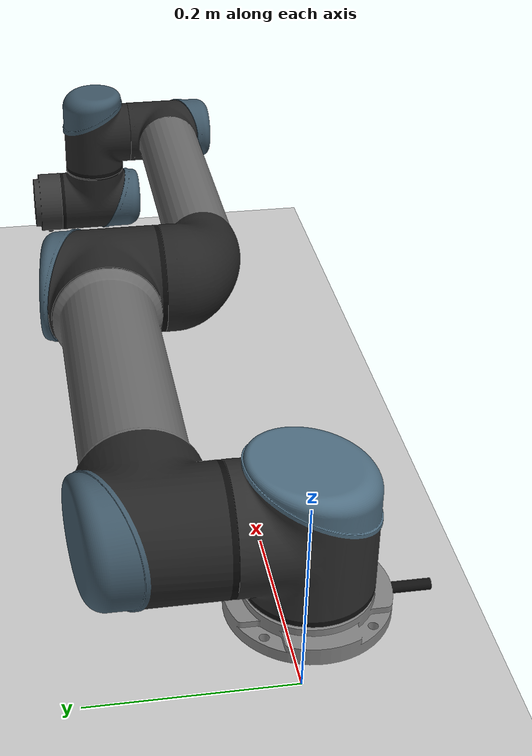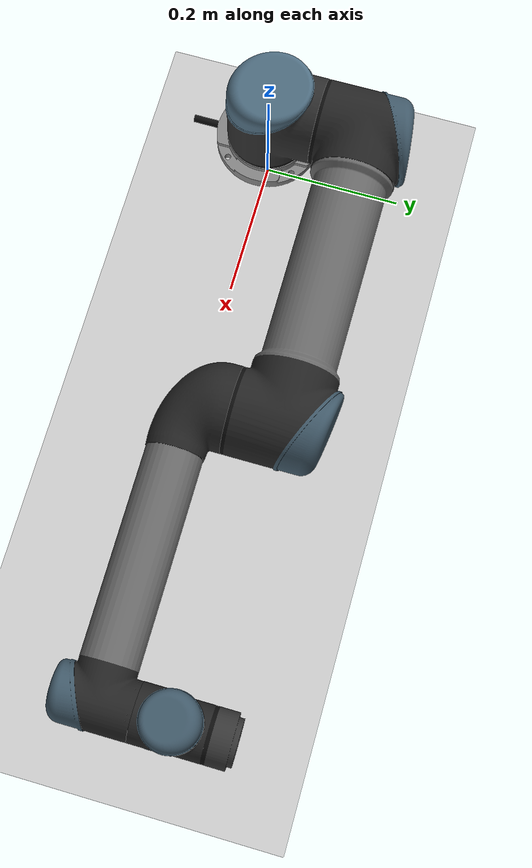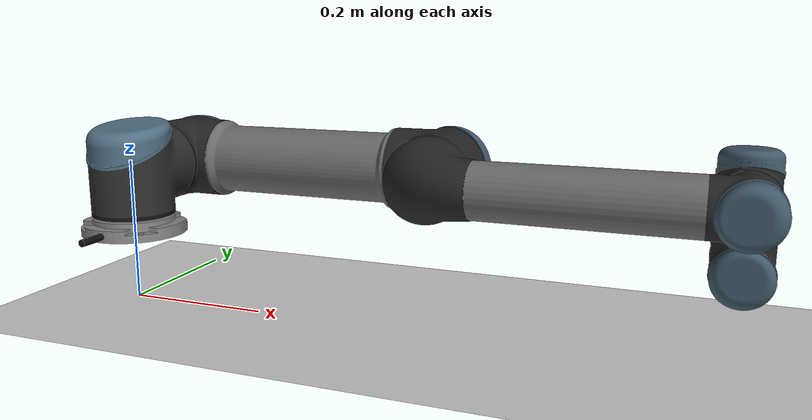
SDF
<sdf version="1.7">
 <world name="default">
  <light name="sun" type="directional">
   <pose>0 0 10 0 -0 0</pose>
   <diffuse>0.8 0.8 0.8 1</diffuse>
   <specular>0.2 0.2 0.2 1</specular>
   <attenuation>
    <range>1000</range>
    <constant>0.9</constant>
    <linear>0.01</linear>
    <quadratic>0.001</quadratic>
   </attenuation>
   <direction>-0.5 0.1 -0.9</direction>
   <spot><inner_angle>0</inner_angle><outer_angle>0</outer_angle><falloff>0</falloff></spot>
  </light>
  <model name="ground_plane">
   <static>1</static>
   <link name="link">
    <collision name="collision">
     <geometry><plane><normal>0 0 1</normal><size>100 100</size></plane></geometry>
     <surface><friction><ode><mu>100</mu><mu2>50</mu2></ode></friction></surface>
    </collision>
    <visual name="visual">
     <cast_shadows>0</cast_shadows>
     <geometry><plane><normal>0 0 1</normal><size>100 100</size></plane></geometry>
     <material>
      <script><uri>file://media/materials/scripts/gazebo.material</uri><name>Gazebo/Grey</name></script>
     </material>
    </visual>
   </link>
  </model>
  <gravity>0 0 -9.8</gravity>
  <magnetic_field>6e-06 2.3e-05 -4.2e-05</magnetic_field>
  <atmosphere type="adiabatic"/>
  <physics type="ode">
   <max_step_size>0.001</max_step_size>
   <real_time_factor>1</real_time_factor>
   <real_time_update_rate>1000</real_time_update_rate>
  </physics>
  <scene><ambient>0.4 0.4 0.4 1</ambient><background>0.7 0.7 0.7 1</background><shadows>1</shadows></scene>
  <spherical_coordinates>
   <surface_model>EARTH_WGS84</surface_model>
   <latitude_deg>0</latitude_deg>
   <longitude_deg>0</longitude_deg>
   <elevation>0</elevation>
   <heading_deg>0</heading_deg>
  </spherical_coordinates>
  <model name="robot">
   <joint name="world_joint" type="fixed">
    <pose relative_to="__model__">0 0 0 0 -0 0</pose>
    <parent>world</parent>
    <child>base_link</child>
   </joint>
   <link name="base_link">
    <pose relative_to="world_joint">0 0 0 0 -0 0</pose>
    <inertial>
     <mass>4</mass>
     <inertia>
      <ixx>0.00443333</ixx>
      <ixy>0</ixy>
      <ixz>0</ixz>
      <iyy>0.00443333</iyy>
      <iyz>0</iyz>
      <izz>0.0072</izz>
     </inertia>
    </inertial>
    <collision name="base_link_collision">
     <geometry>
      <mesh>
       <scale>1 1 1</scale>
       <uri>/home/zumra/robot_arm/src/universal_robot/ur_description/meshes/ur5/collision/base.stl</uri>
      </mesh>
     </geometry>
    </collision>
    <visual name="base_link_visual">
     <geometry>
      <mesh>
       <scale>1 1 1</scale>
       <uri>/home/zumra/robot_arm/src/universal_robot/ur_description/meshes/ur5/visual/base.dae</uri>
      </mesh>
     </geometry>
    </visual>
   </link>
   <joint name="shoulder_pan_joint" type="revolute">
    <pose relative_to="base_link">0 0 0.089159 0 -0 0</pose>
    <parent>base_link</parent>
    <child>shoulder_link</child>
    <axis>
     <xyz>0 0 1</xyz>
     <limit><lower>-6.28319</lower><upper>6.28319</upper><effort>150</effort><velocity>3.15</velocity></limit>
     <dynamics>
      <damping>0</damping>
      <friction>0</friction>
      <spring_reference>0</spring_reference>
      <spring_stiffness>0</spring_stiffness>
     </dynamics>
    </axis>
   </joint>
   <link name="shoulder_link">
    <pose relative_to="shoulder_pan_joint">0 0 0 0 -0 0</pose>
    <inertial>
     <mass>3.7</mass>
     <inertia>
      <ixx>0.0102675</ixx>
      <ixy>0</ixy>
      <ixz>0</ixz>
      <iyy>0.0102675</iyy>
      <iyz>0</iyz>
      <izz>0.00666</izz>
     </inertia>
    </inertial>
    <collision name="shoulder_link_collision">
     <geometry>
      <mesh>
       <scale>1 1 1</scale>
       <uri>/home/zumra/robot_arm/src/universal_robot/ur_description/meshes/ur5/collision/shoulder.stl</uri>
      </mesh>
     </geometry>
    </collision>
    <visual name="shoulder_link_visual">
     <geometry>
      <mesh>
       <scale>1 1 1</scale>
       <uri>/home/zumra/robot_arm/src/universal_robot/ur_description/meshes/ur5/visual/shoulder.dae</uri>
      </mesh>
     </geometry>
    </visual>
    <self_collide>1</self_collide>
   </link>
   <joint name="shoulder_lift_joint" type="revolute">
    <pose relative_to="shoulder_link">0 0.13585 0 3.14159 1.57079 3.14159</pose>
    <parent>shoulder_link</parent>
    <child>upper_arm_link</child>
    <axis>
     <xyz>0 1 0</xyz>
     <limit><lower>-6.28319</lower><upper>6.28319</upper><effort>150</effort><velocity>3.15</velocity></limit>
     <dynamics>
      <damping>0</damping>
      <friction>0</friction>
      <spring_reference>0</spring_reference>
      <spring_stiffness>0</spring_stiffness>
     </dynamics>
    </axis>
   </joint>
   <link name="upper_arm_link">
    <pose relative_to="shoulder_lift_joint">0 0 0 0 -0 0</pose>
    <inertial>
     <pose>0 0 0.28 0 -0 0</pose>
     <mass>8.393</mass>
     <inertia>
      <ixx>0.226891</ixx>
      <ixy>0</ixy>
      <ixz>0</ixz>
      <iyy>0.226891</iyy>
      <iyz>0</iyz>
      <izz>0.0151074</izz>
     </inertia>
    </inertial>
    <collision name="upper_arm_link_collision">
     <geometry>
      <mesh>
       <scale>1 1 1</scale>
       <uri>/home/zumra/robot_arm/src/universal_robot/ur_description/meshes/ur5/collision/upperarm.stl</uri>
      </mesh>
     </geometry>
    </collision>
    <visual name="upper_arm_link_visual">
     <geometry>
      <mesh>
       <scale>1 1 1</scale>
       <uri>/home/zumra/robot_arm/src/universal_robot/ur_description/meshes/ur5/visual/upperarm.dae</uri>
      </mesh>
     </geometry>
    </visual>
    <self_collide>1</self_collide>
   </link>
   <joint name="elbow_joint" type="revolute">
    <pose relative_to="upper_arm_link">0 -0.1197 0.425 0 -0 0</pose>
    <parent>upper_arm_link</parent>
    <child>forearm_link</child>
    <axis>
     <xyz>0 1 0</xyz>
     <limit><lower>-3.14159</lower><upper>3.14159</upper><effort>150</effort><velocity>3.15</velocity></limit>
     <dynamics>
      <damping>0</damping>
      <friction>0</friction>
      <spring_reference>0</spring_reference>
      <spring_stiffness>0</spring_stiffness>
     </dynamics>
    </axis>
   </joint>
   <link name="forearm_link">
    <pose relative_to="elbow_joint">0 0 0 0 -0 0</pose>
    <inertial>
     <pose>0 0 0.196125 0 -0 0</pose>
     <mass>2.275</mass>
     <inertia>
      <ixx>0.0312168</ixx>
      <ixy>0</ixy>
      <ixz>0</ixz>
      <iyy>0.0312168</iyy>
      <iyz>0</iyz>
      <izz>0.004095</izz>
     </inertia>
    </inertial>
    <collision name="forearm_link_collision">
     <geometry>
      <mesh>
       <scale>1 1 1</scale>
       <uri>/home/zumra/robot_arm/src/universal_robot/ur_description/meshes/ur5/collision/forearm.stl</uri>
      </mesh>
     </geometry>
    </collision>
    <visual name="forearm_link_visual">
     <geometry>
      <mesh>
       <scale>1 1 1</scale>
       <uri>/home/zumra/robot_arm/src/universal_robot/ur_description/meshes/ur5/visual/forearm.dae</uri>
      </mesh>
     </geometry>
    </visual>
    <self_collide>1</self_collide>
   </link>
   <joint name="wrist_1_joint" type="revolute">
    <pose relative_to="forearm_link">0 0 0.39225 3.14159 1.57079 3.14159</pose>
    <parent>forearm_link</parent>
    <child>wrist_1_link</child>
    <axis>
     <xyz>0 1 0</xyz>
     <limit><lower>-6.28319</lower><upper>6.28319</upper><effort>28</effort><velocity>3.2</velocity></limit>
     <dynamics>
      <damping>0</damping>
      <friction>0</friction>
      <spring_reference>0</spring_reference>
      <spring_stiffness>0</spring_stiffness>
     </dynamics>
    </axis>
   </joint>
   <link name="wrist_1_link">
    <pose relative_to="wrist_1_joint">0 0 0 0 -0 0</pose>
    <inertial>
     <pose>0 0.093 0 0 -0 0</pose>
     <mass>1.219</mass>
     <inertia>
      <ixx>0.0025599</ixx>
      <ixy>0</ixy>
      <ixz>0</ixz>
      <iyy>0.0025599</iyy>
      <iyz>0</iyz>
      <izz>0.0021942</izz>
     </inertia>
    </inertial>
    <collision name="wrist_1_link_collision">
     <geometry>
      <mesh>
       <scale>1 1 1</scale>
       <uri>/home/zumra/robot_arm/src/universal_robot/ur_description/meshes/ur5/collision/wrist1.stl</uri>
      </mesh>
     </geometry>
    </collision>
    <visual name="wrist_1_link_visual">
     <geometry>
      <mesh>
       <scale>1 1 1</scale>
       <uri>/home/zumra/robot_arm/src/universal_robot/ur_description/meshes/ur5/visual/wrist1.dae</uri>
      </mesh>
     </geometry>
    </visual>
    <self_collide>1</self_collide>
   </link>
   <joint name="wrist_2_joint" type="revolute">
    <pose relative_to="wrist_1_link">0 0.093 0 0 -0 0</pose>
    <parent>wrist_1_link</parent>
    <child>wrist_2_link</child>
    <axis>
     <xyz>0 0 1</xyz>
     <limit><lower>-6.28319</lower><upper>6.28319</upper><effort>28</effort><velocity>3.2</velocity></limit>
     <dynamics>
      <damping>0</damping>
      <friction>0</friction>
      <spring_reference>0</spring_reference>
      <spring_stiffness>0</spring_stiffness>
     </dynamics>
    </axis>
   </joint>
   <link name="wrist_2_link">
    <pose relative_to="wrist_2_joint">0 0 0 0 -0 0</pose>
    <inertial>
     <pose>0 0 0.09465 0 -0 0</pose>
     <mass>1.219</mass>
     <inertia>
      <ixx>0.0025599</ixx>
      <ixy>0</ixy>
      <ixz>0</ixz>
      <iyy>0.0025599</iyy>
      <iyz>0</iyz>
      <izz>0.0021942</izz>
     </inertia>
    </inertial>
    <collision name="wrist_2_link_collision">
     <geometry>
      <mesh>
       <scale>1 1 1</scale>
       <uri>/home/zumra/robot_arm/src/universal_robot/ur_description/meshes/ur5/collision/wrist2.stl</uri>
      </mesh>
     </geometry>
    </collision>
    <visual name="wrist_2_link_visual">
     <geometry>
      <mesh>
       <scale>1 1 1</scale>
       <uri>/home/zumra/robot_arm/src/universal_robot/ur_description/meshes/ur5/visual/wrist2.dae</uri>
      </mesh>
     </geometry>
    </visual>
    <self_collide>1</self_collide>
   </link>
   <joint name="wrist_3_joint" type="revolute">
    <pose relative_to="wrist_2_link">0 0 0.09465 0 -0 0</pose>
    <parent>wrist_2_link</parent>
    <child>wrist_3_link</child>
    <axis>
     <xyz>0 1 0</xyz>
     <limit><lower>-6.28319</lower><upper>6.28319</upper><effort>28</effort><velocity>3.2</velocity></limit>
     <dynamics>
      <damping>0</damping>
      <friction>0</friction>
      <spring_reference>0</spring_reference>
      <spring_stiffness>0</spring_stiffness>
     </dynamics>
    </axis>
   </joint>
   <link name="wrist_3_link">
    <pose relative_to="wrist_3_joint">0 0 0 0 -0 0</pose>
    <inertial>
     <pose>0 0.06505 0 1.5708 -0 0</pose>
     <mass>0.1879</mass>
     <inertia>
      <ixx>8.46959e-05</ixx>
      <ixy>0</ixy>
      <ixz>0</ixz>
      <iyy>8.46959e-05</iyy>
      <iyz>0</iyz>
      <izz>0.000132117</izz>
     </inertia>
    </inertial>
    <collision name="wrist_3_link_collision">
     <geometry>
      <mesh>
       <scale>1 1 1</scale>
       <uri>/home/zumra/robot_arm/src/universal_robot/ur_description/meshes/ur5/collision/wrist3.stl</uri>
      </mesh>
     </geometry>
    </collision>
    <collision name="wrist_3_link_fixed_joint_lump__ee_link_collision_1">
     <pose>-0 0.0723 0 0 -0 1.5708</pose>
     <geometry><box><size>0.01 0.01 0.01</size></box></geometry>
    </collision>
    <visual name="wrist_3_link_visual">
     <geometry>
      <mesh>
       <scale>1 1 1</scale>
       <uri>/home/zumra/robot_arm/src/universal_robot/ur_description/meshes/ur5/visual/wrist3.dae</uri>
      </mesh>
     </geometry>
    </visual>
    <self_collide>1</self_collide>
   </link>
   <static>0</static>
   <plugin name="ros_control" filename="libgazebo_ros_control.so"><robotNamespace>/</robotNamespace></plugin>
   <pose>0 0 0.1 2.9e-05 -0.000146 0</pose>
  </model>
 </world>
</sdf>
